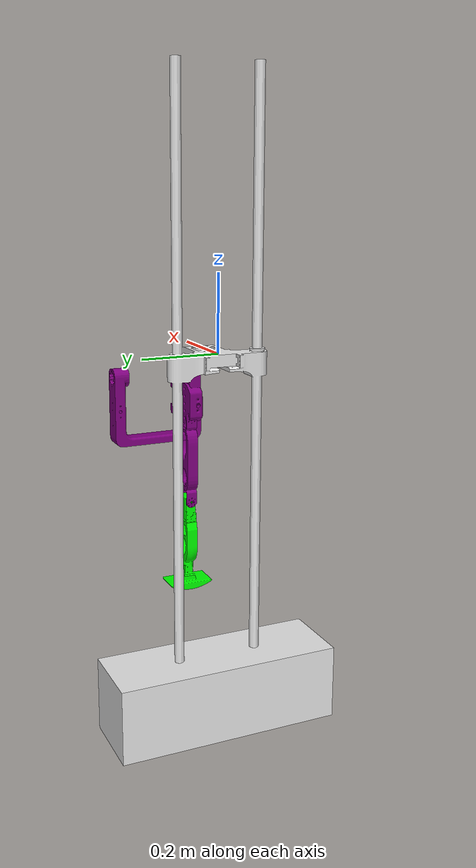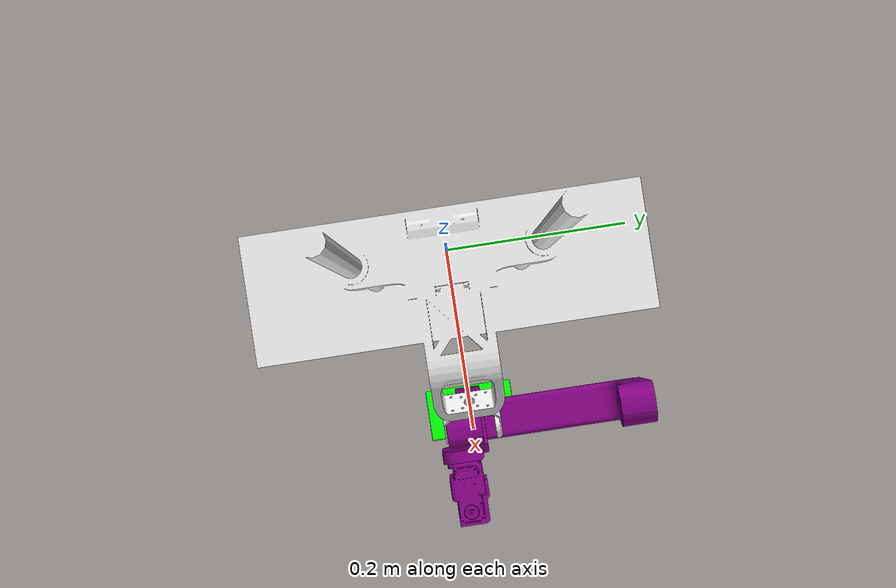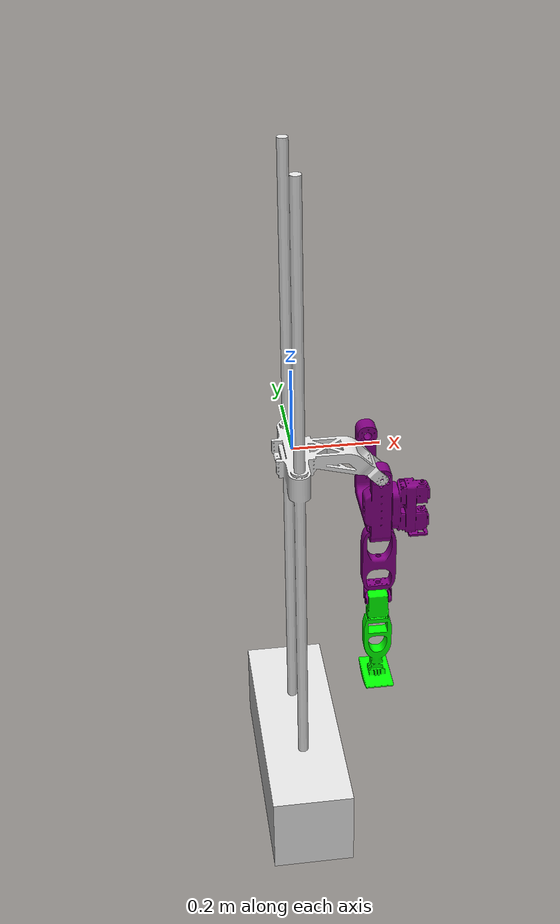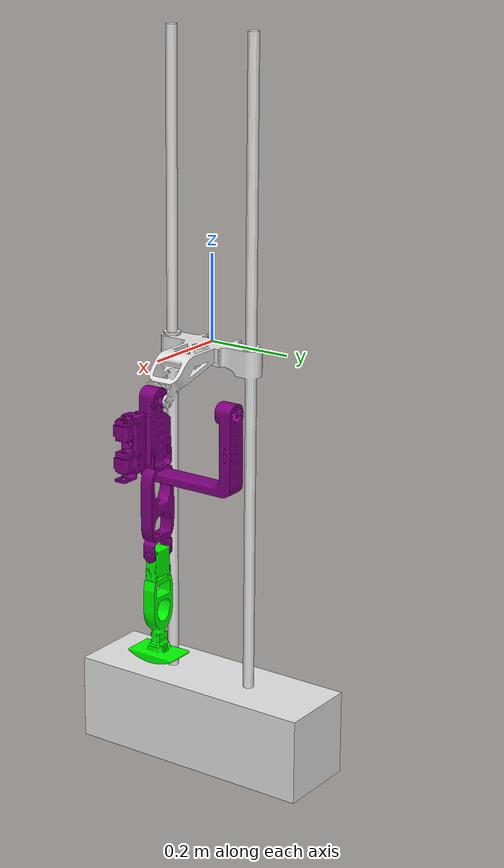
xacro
<?xml version="1.0"?>
<robot name="pata_der" xmlns:xacro="http://www.ros.org/wiki/xacro">
  <link name="world" />
  <joint name="world_to_base" type="fixed">
    <parent link="world" />
    <child link="Base_link" />
    <origin xyz="0 0 0" rpy="0 1.57079632679 0" />
  </joint>

  <xacro:include filename="$(find robot_description)/urdf/urdf_der/Pata_Der_Robo_Parcial_URDF_V2.2.urdf" />
</robot>

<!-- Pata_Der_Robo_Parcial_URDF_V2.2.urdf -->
<robot
  name="Pata_Der_Robo_Parcial_URDF_V2.2">
  <link
    name="Base_link">
    <inertial>
      <origin
        xyz="0.82743 3.3032E-07 0.0038887"
        rpy="0 0 0" />
      <mass
        value="25.798" />
      <inertia
        ixx="0.79521"
        ixy="3.8562E-09"
        ixz="-8.6544E-05"
        iyy="1.4694"
        iyz="7.4798E-09"
        izz="2.1148" />
    </inertial>
    <visual>
      <origin
        xyz="0 0 0"
        rpy="0 0 0" />
      <geometry>
        <mesh
          filename="package://robot_description/meshes/meshes_der/Base_link.STL" />
      </geometry>
      <material
        name="">
        <color
          rgba="0.89412 0.89412 0.89412 1" />
      </material>
    </visual>
    <collision>
      <origin
        xyz="0 0 0"
        rpy="0 0 0" />
      <geometry>
        <mesh
          filename="package://robot_description/meshes/meshes_der/Base_link.STL" />
      </geometry>
    </collision>
  </link>
  <link
    name="Right_Hip_Roll_Link">
    <inertial>
      <origin
        xyz="0.059729 0.00018989 -0.00021766"
        rpy="0 0 0" />
      <mass
        value="0.19411" />
      <inertia
        ixx="5.2459E-05"
        ixy="-1.017E-07"
        ixz="-1.017E-07"
        iyy="8.9433E-05"
        iyz="-6.4684E-10"
        izz="8.9433E-05" />
    </inertial>
    <visual>
      <origin
        xyz="0 0 0"
        rpy="0 0 0" />
      <geometry>
        <mesh
          filename="package://robot_description/meshes/meshes_der/Right_Hip_Roll_Link.STL" />
      </geometry>
      <material
        name="">
        <color
          rgba="0.5020 0 0.5020 1" />
      </material>
    </visual>
    <collision>
      <origin
        xyz="0 0 0"
        rpy="0 0 0" />
      <geometry>
        <mesh
          filename="package://robot_description/meshes/meshes_der/Right_Hip_Roll_Link.STL" />
      </geometry>
    </collision>
  </link>
  <joint
    name="Right_Hip_Roll_Joint"
    type="revolute">
    <origin
      xyz="0.083256 0 0.20319"
      rpy="1.5708 0 0" />
    <parent
      link="Base_link" />
    <child
      link="Right_Hip_Roll_Link" />
    <axis
      xyz="0 0 1" />
    <limit
      lower="-0.34907"
      upper="2.2689"
      effort="100"
      velocity="100" />
  </joint>
  <link
    name="Right_Hip_Pitch_Link">
    <inertial>
      <origin
        xyz="0.12138 0.00022499 0.00023023"
        rpy="0 0 0" />
      <mass
        value="0.21755" />
      <inertia
        ixx="0.00017367"
        ixy="8.6341E-10"
        ixz="-8.5257E-09"
        iyy="0.00053617"
        iyz="-3.2464E-09"
        izz="0.00039504" />
    </inertial>
    <visual>
      <origin
        xyz="0 0 0"
        rpy="0 0 0" />
      <geometry>
        <mesh
          filename="package://robot_description/meshes/meshes_der/Right_Hip_Pitch_Link.STL" />
      </geometry>
      <material
        name="">
        <color
          rgba="0.5020 0 0.5020 1" />
      </material>
    </visual>
    <collision>
      <origin
        xyz="0 0 0"
        rpy="0 0 0" />
      <geometry>
        <mesh
          filename="package://robot_description/meshes/meshes_der/Right_Hip_Pitch_Link.STL" />
      </geometry>
    </collision>
  </link>
  <joint
    name="Right_Hip_Pitch_Joint"
    type="revolute">
    <origin
      xyz="0.11945 0 0"
      rpy="-1.5708 0 0" />
    <parent
      link="Right_Hip_Roll_Link" />
    <child
      link="Right_Hip_Pitch_Link" />
    <axis
      xyz="0 0 1" />
    <limit
      lower="-2.0071"
      upper="2.0071"
      effort="100"
      velocity="100" />
  </joint>
  <link
    name="Right_Knee_Link">
    <inertial>
      <origin
        xyz="0.14444 -0.00089337 -0.00035083"
        rpy="0 0 0" />
      <mass
        value="0.38813" />
      <inertia
        ixx="0.00026487"
        ixy="-8.6825E-07"
        ixz="-9.2412E-08"
        iyy="0.00042734"
        iyz="-1.1433E-09"
        izz="0.00042054" />
    </inertial>
    <visual>
      <origin
        xyz="0 0 0"
        rpy="0 0 0" />
      <geometry>
        <mesh
          filename="package://robot_description/meshes/meshes_der/Right_Knee_Link.STL" />
      </geometry>
      <material
        name="">
        <color
          rgba="0 1 0 1" />
      </material>
    </visual>
    <collision>
      <origin
        xyz="0 0 0"
        rpy="0 0 0" />
      <geometry>
        <mesh
          filename="package://robot_description/meshes/meshes_der/Right_Knee_Link.STL" />
      </geometry>
    </collision>
  </link>
  <joint
    name="Right_Knee_Joint"
    type="revolute">
    <origin
      xyz="0.23605 0 0"
      rpy="-3.1416 0 0" />
    <parent
      link="Right_Hip_Pitch_Link" />
    <child
      link="Right_Knee_Link" />
    <axis
      xyz="0 0 -1" />
    <limit
      lower="-2.0071"
      upper="2.0071"
      effort="100"
      velocity="100" />
  </joint>
</robot>
